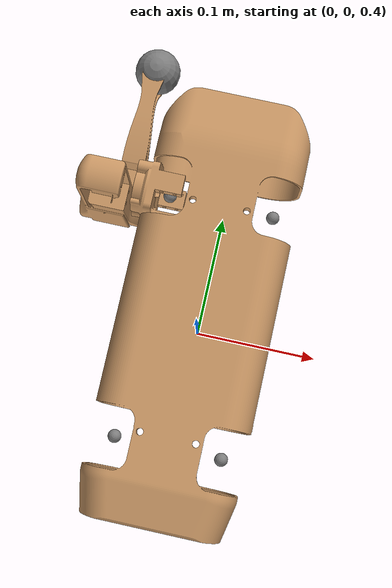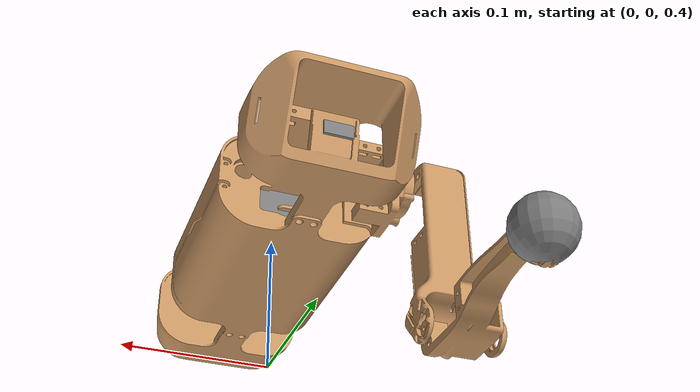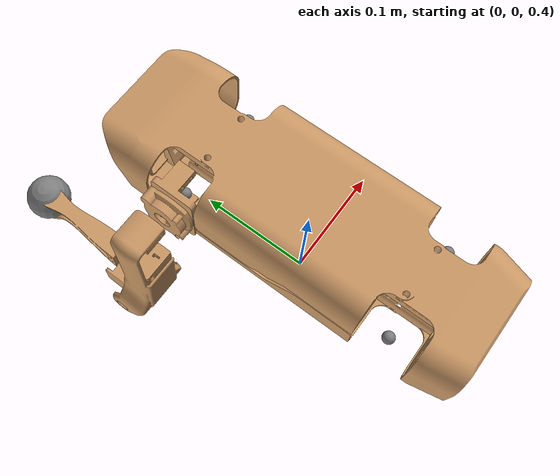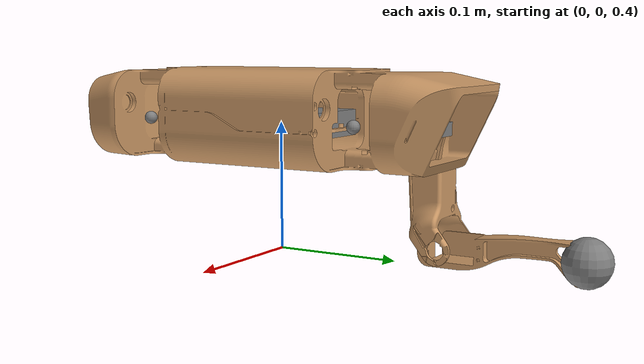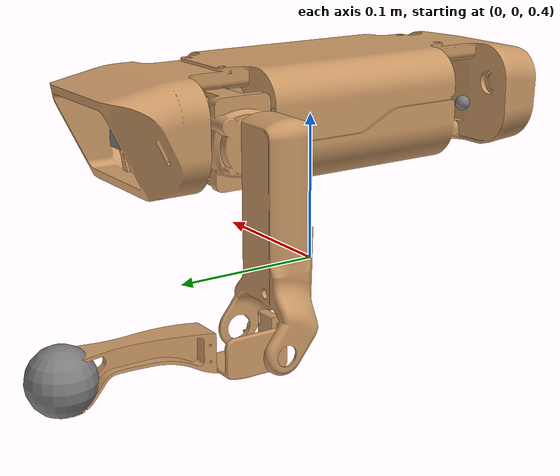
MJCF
<mujoco model="qrpfra_v3_ik_model">
    <compiler angle="degree" coordinate="local" inertiafromgeom="true" convexhull="true"/>
    <option integrator="RK4" timestep="0.01" gravity="0 0 -9.81" density="1.24"/>

    <default>
        <joint armature="1" damping="1" limited="true"/>
        <geom conaffinity="0" condim="3" density="1.24" friction="1 0.5 0.5" margin="0.01" rgba="0.8 0.6 0.4 1"/>

        <default class="servo_motors">
            <position ctrllimited="true" ctrlrange="-100 100" gear="95"/>
        </default>

        <default class="joint_def">
            <joint pos="0 0 0" range="-60 60" type="hinge" damping="150"/>
        </default>

        <default class="Left_foot_Site">
            <site pos="-0.015 0.12 0" type="sphere" size="0.02"/>
        </default>

        <default class="Right_foot_Site">
            <site pos="0.015 0.12 0" type="sphere" size="0.02"/>
        </default>

    </default>

    <asset>
        <mesh name="main_body" file="/Users/deniz/PycharmProjects/QRPfRA_Senior_Project/QRPfRA_sim_body_STLs/QRPfRA_body_m.stl"/>
        <mesh name="Left_Hind_Limb" file="/Users/deniz/PycharmProjects/QRPfRA_Senior_Project/QRPfRA_sim_body_STLs/QRPfRA_left_hindlimb_m.stl"/>
        <mesh name="Left_MidLimb" file="/Users/deniz/PycharmProjects/QRPfRA_Senior_Project/QRPfRA_sim_body_STLs/QRPfRA_left_midlimb_m.stl"/>
        <mesh name="Left_Wrist" file="/Users/deniz/PycharmProjects/QRPfRA_Senior_Project/QRPfRA_sim_body_STLs/QRPfRA_left_wrist_m.stl"/>
        <mesh name="Right_Hind_Limb" file="/Users/deniz/PycharmProjects/QRPfRA_Senior_Project/QRPfRA_sim_body_STLs/QRPfRA_right_hindlimb_m.stl"/>
        <mesh name="Right_MidLimb" file="/Users/deniz/PycharmProjects/QRPfRA_Senior_Project/QRPfRA_sim_body_STLs/QRPfRA_right_midlimb_m.stl"/>
        <mesh name="Right_Wrist" file="/Users/deniz/PycharmProjects/QRPfRA_Senior_Project/QRPfRA_sim_body_STLs/QRPfRA_right_wrist_m.stl"/>
    </asset>

    <worldbody>
        <body name="base_link" pos="0 0 0.5">
            <camera name="track" mode="trackcom" pos="0 -1 0.3" xyaxes="1 0 0 0 0 1"/>

            <geom type="mesh" mesh="main_body" mass="2" friction="0.3" density="1240" />
            <!--joint limited="true" margin="0.01" name="root" pos="0 0 0" type="free" stiffness="0" damping="0" frictionloss="0" armature="0"/-->

            <site name="base_link_Site" pos="0 0 0" type="box" size="0.03 0.05 0.01"/>

            <site name="head_rangefinder" pos="0 0.14 0" type="box" size="0.01 0.005 0.001" euler="-90 0 0"/>
            <site name="rear_rangefinder" pos="0 -0.155 0" type="box" size="0.01 0.005 0.001" euler="90 0 0"/>

            <site name="FL_Leg_ref" pos="-0.04 0.0875 0.0025"/>
            <site name="RL_Leg_ref" pos="-0.04 -0.0975 0.0025"/>
            <site name="FR_Leg_ref" pos="0.04 0.0875 0.0025"/>
            <site name="RR_Leg_ref" pos="0.04 -0.0975 0.0025"/>

            <body name="front_Left_Hind_Limb" pos="-0.04 0.065 0.013">
                <joint class="joint_def" axis="0 1 0" name="FL_hind_to_base"/>
                <geom type="mesh" mesh="Left_Hind_Limb" mass="0.150" density="1240"/>

                <body name="front_Left_MidLimb" pos="-0.025 0.023 -0.0105" euler="90 0 0">
                    <joint class="joint_def" axis="1 0 0" name="FL_mid_to_base"/>
                    <geom type="mesh" mesh="Left_MidLimb" mass="0.350" density="1240"/>

                    <body name="front_Left_Wrist" pos="-0.005 -0.107 -0.013" euler="-90 0 0">
                        <joint class="joint_def" axis="1 0 0" name="FL_wrist_to_mid" />
                        <geom type="mesh" mesh="Left_Wrist" mass="0.350" density="1240"/>

                        <site name="front_Left_Wrist_Site" class="Left_foot_Site"/>

                    </body>
                </body>
            </body>

        </body>

    </worldbody>

    <actuator>
        <position class="servo_motors" joint="FL_hind_to_base" name="FL_Hind2Base"/>
        <position class="servo_motors" joint="FL_mid_to_base" name="FL_Mid2Hind"/>
        <position class="servo_motors" joint="FL_wrist_to_mid" name="FL_Wrist2Mid"/>

    </actuator>

    <sensor>

        <framepos name="Left_Foot_pos" reftype="site" refname="FL_Leg_ref" objtype="site" objname="front_Left_Wrist_Site"/>

        <jointpos name="FL_Hind2Base_angle" joint="FL_hind_to_base"/>
        <jointpos name="FL_Mid2Hind_angle" joint="FL_mid_to_base"/>
        <jointpos name="FL_Wrist2Mid_angle" joint="FL_wrist_to_mid"/>

    </sensor>

</mujoco>
